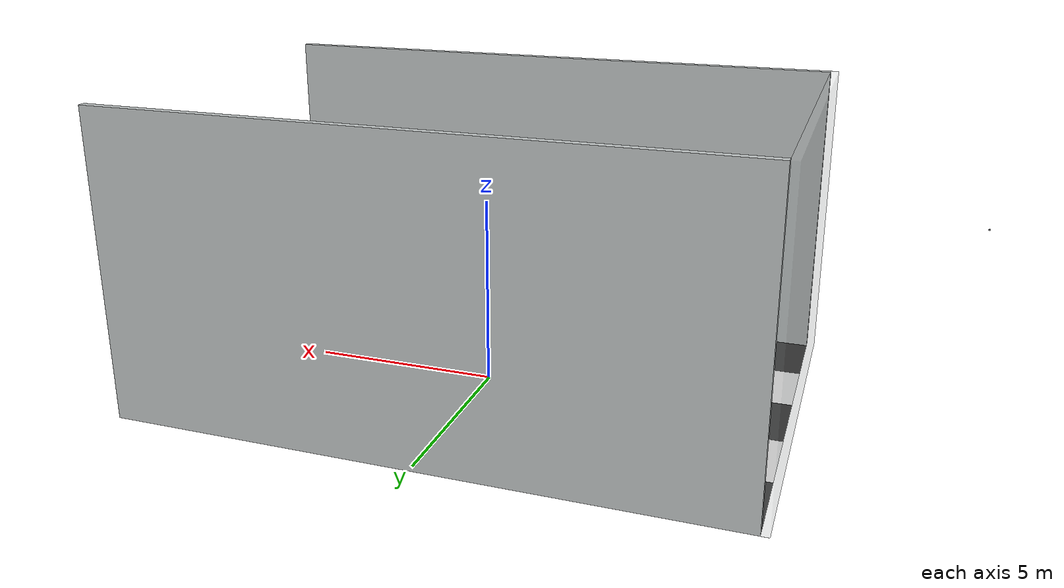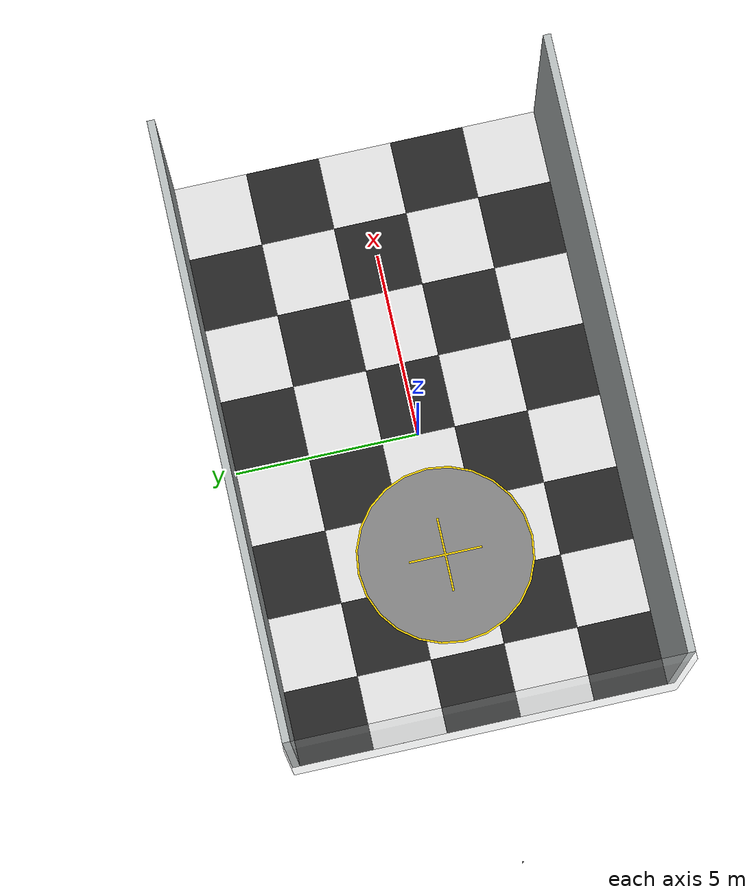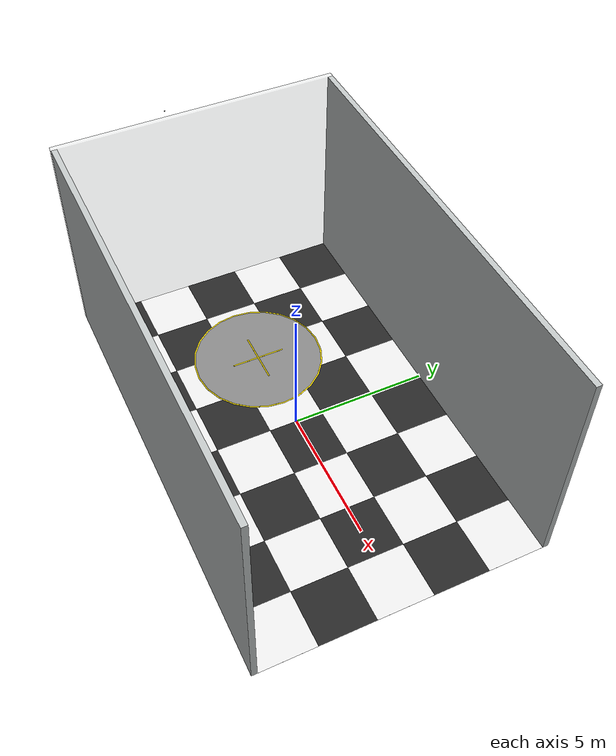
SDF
<sdf version="1.9">
 <world name="drone_hangar_small">
  <model name="ground_plane">
   <static>true</static>
   <link name="link">
    <collision name="collision">
     <geometry><plane><normal>0 0 1</normal><size>16.0 10.0</size></plane></geometry>
    </collision>
   </link>
  </model>
  <model name="floor_tiles">
   <static>true</static>
   <pose>0 0 0.0015 0 0 0</pose>
   <link name="tiles">
    <visual name="t_00_00">
     <pose>-7.0 -4.0 0 0 0 0</pose>
     <geometry><box><size>2 2 0.001</size></box></geometry>
     <material><ambient>0.15 0.15 0.15 1</ambient><diffuse>0.15 0.15 0.15 1</diffuse></material>
    </visual>
    <visual name="t_00_01">
     <pose>-7.0 -2.0 0 0 0 0</pose>
     <geometry><box><size>2 2 0.001</size></box></geometry>
     <material><ambient>0.9 0.9 0.9 1</ambient><diffuse>0.9 0.9 0.9 1</diffuse></material>
    </visual>
    <visual name="t_00_02">
     <pose>-7.0 0.0 0 0 0 0</pose>
     <geometry><box><size>2 2 0.001</size></box></geometry>
     <material><ambient>0.15 0.15 0.15 1</ambient><diffuse>0.15 0.15 0.15 1</diffuse></material>
    </visual>
    <visual name="t_00_03">
     <pose>-7.0 2.0 0 0 0 0</pose>
     <geometry><box><size>2 2 0.001</size></box></geometry>
     <material><ambient>0.9 0.9 0.9 1</ambient><diffuse>0.9 0.9 0.9 1</diffuse></material>
    </visual>
    <visual name="t_00_04">
     <pose>-7.0 4.0 0 0 0 0</pose>
     <geometry><box><size>2 2 0.001</size></box></geometry>
     <material><ambient>0.15 0.15 0.15 1</ambient><diffuse>0.15 0.15 0.15 1</diffuse></material>
    </visual>
    <visual name="t_01_00">
     <pose>-5.0 -4.0 0 0 0 0</pose>
     <geometry><box><size>2 2 0.001</size></box></geometry>
     <material><ambient>0.9 0.9 0.9 1</ambient><diffuse>0.9 0.9 0.9 1</diffuse></material>
    </visual>
    <visual name="t_01_01">
     <pose>-5.0 -2.0 0 0 0 0</pose>
     <geometry><box><size>2 2 0.001</size></box></geometry>
     <material><ambient>0.15 0.15 0.15 1</ambient><diffuse>0.15 0.15 0.15 1</diffuse></material>
    </visual>
    <visual name="t_01_02">
     <pose>-5.0 0.0 0 0 0 0</pose>
     <geometry><box><size>2 2 0.001</size></box></geometry>
     <material><ambient>0.9 0.9 0.9 1</ambient><diffuse>0.9 0.9 0.9 1</diffuse></material>
    </visual>
    <visual name="t_01_03">
     <pose>-5.0 2.0 0 0 0 0</pose>
     <geometry><box><size>2 2 0.001</size></box></geometry>
     <material><ambient>0.15 0.15 0.15 1</ambient><diffuse>0.15 0.15 0.15 1</diffuse></material>
    </visual>
    <visual name="t_01_04">
     <pose>-5.0 4.0 0 0 0 0</pose>
     <geometry><box><size>2 2 0.001</size></box></geometry>
     <material><ambient>0.9 0.9 0.9 1</ambient><diffuse>0.9 0.9 0.9 1</diffuse></material>
    </visual>
    <visual name="t_02_00">
     <pose>-3.0 -4.0 0 0 0 0</pose>
     <geometry><box><size>2 2 0.001</size></box></geometry>
     <material><ambient>0.15 0.15 0.15 1</ambient><diffuse>0.15 0.15 0.15 1</diffuse></material>
    </visual>
    <visual name="t_02_01">
     <pose>-3.0 -2.0 0 0 0 0</pose>
     <geometry><box><size>2 2 0.001</size></box></geometry>
     <material><ambient>0.9 0.9 0.9 1</ambient><diffuse>0.9 0.9 0.9 1</diffuse></material>
    </visual>
    <visual name="t_02_02">
     <pose>-3.0 0.0 0 0 0 0</pose>
     <geometry><box><size>2 2 0.001</size></box></geometry>
     <material><ambient>0.15 0.15 0.15 1</ambient><diffuse>0.15 0.15 0.15 1</diffuse></material>
    </visual>
    <visual name="t_02_03">
     <pose>-3.0 2.0 0 0 0 0</pose>
     <geometry><box><size>2 2 0.001</size></box></geometry>
     <material><ambient>0.9 0.9 0.9 1</ambient><diffuse>0.9 0.9 0.9 1</diffuse></material>
    </visual>
    <visual name="t_02_04">
     <pose>-3.0 4.0 0 0 0 0</pose>
     <geometry><box><size>2 2 0.001</size></box></geometry>
     <material><ambient>0.15 0.15 0.15 1</ambient><diffuse>0.15 0.15 0.15 1</diffuse></material>
    </visual>
    <visual name="t_03_00">
     <pose>-1.0 -4.0 0 0 0 0</pose>
     <geometry><box><size>2 2 0.001</size></box></geometry>
     <material><ambient>0.9 0.9 0.9 1</ambient><diffuse>0.9 0.9 0.9 1</diffuse></material>
    </visual>
    <visual name="t_03_01">
     <pose>-1.0 -2.0 0 0 0 0</pose>
     <geometry><box><size>2 2 0.001</size></box></geometry>
     <material><ambient>0.15 0.15 0.15 1</ambient><diffuse>0.15 0.15 0.15 1</diffuse></material>
    </visual>
    <visual name="t_03_02">
     <pose>-1.0 0.0 0 0 0 0</pose>
     <geometry><box><size>2 2 0.001</size></box></geometry>
     <material><ambient>0.9 0.9 0.9 1</ambient><diffuse>0.9 0.9 0.9 1</diffuse></material>
    </visual>
    <visual name="t_03_03">
     <pose>-1.0 2.0 0 0 0 0</pose>
     <geometry><box><size>2 2 0.001</size></box></geometry>
     <material><ambient>0.15 0.15 0.15 1</ambient><diffuse>0.15 0.15 0.15 1</diffuse></material>
    </visual>
    <visual name="t_03_04">
     <pose>-1.0 4.0 0 0 0 0</pose>
     <geometry><box><size>2 2 0.001</size></box></geometry>
     <material><ambient>0.9 0.9 0.9 1</ambient><diffuse>0.9 0.9 0.9 1</diffuse></material>
    </visual>
    <visual name="t_04_00">
     <pose>1.0 -4.0 0 0 0 0</pose>
     <geometry><box><size>2 2 0.001</size></box></geometry>
     <material><ambient>0.15 0.15 0.15 1</ambient><diffuse>0.15 0.15 0.15 1</diffuse></material>
    </visual>
    <visual name="t_04_01">
     <pose>1.0 -2.0 0 0 0 0</pose>
     <geometry><box><size>2 2 0.001</size></box></geometry>
     <material><ambient>0.9 0.9 0.9 1</ambient><diffuse>0.9 0.9 0.9 1</diffuse></material>
    </visual>
    <visual name="t_04_02">
     <pose>1.0 0.0 0 0 0 0</pose>
     <geometry><box><size>2 2 0.001</size></box></geometry>
     <material><ambient>0.15 0.15 0.15 1</ambient><diffuse>0.15 0.15 0.15 1</diffuse></material>
    </visual>
    <visual name="t_04_03">
     <pose>1.0 2.0 0 0 0 0</pose>
     <geometry><box><size>2 2 0.001</size></box></geometry>
     <material><ambient>0.9 0.9 0.9 1</ambient><diffuse>0.9 0.9 0.9 1</diffuse></material>
    </visual>
    <visual name="t_04_04">
     <pose>1.0 4.0 0 0 0 0</pose>
     <geometry><box><size>2 2 0.001</size></box></geometry>
     <material><ambient>0.15 0.15 0.15 1</ambient><diffuse>0.15 0.15 0.15 1</diffuse></material>
    </visual>
    <visual name="t_05_00">
     <pose>3.0 -4.0 0 0 0 0</pose>
     <geometry><box><size>2 2 0.001</size></box></geometry>
     <material><ambient>0.9 0.9 0.9 1</ambient><diffuse>0.9 0.9 0.9 1</diffuse></material>
    </visual>
    <visual name="t_05_01">
     <pose>3.0 -2.0 0 0 0 0</pose>
     <geometry><box><size>2 2 0.001</size></box></geometry>
     <material><ambient>0.15 0.15 0.15 1</ambient><diffuse>0.15 0.15 0.15 1</diffuse></material>
    </visual>
    <visual name="t_05_02">
     <pose>3.0 0.0 0 0 0 0</pose>
     <geometry><box><size>2 2 0.001</size></box></geometry>
     <material><ambient>0.9 0.9 0.9 1</ambient><diffuse>0.9 0.9 0.9 1</diffuse></material>
    </visual>
    <visual name="t_05_03">
     <pose>3.0 2.0 0 0 0 0</pose>
     <geometry><box><size>2 2 0.001</size></box></geometry>
     <material><ambient>0.15 0.15 0.15 1</ambient><diffuse>0.15 0.15 0.15 1</diffuse></material>
    </visual>
    <visual name="t_05_04">
     <pose>3.0 4.0 0 0 0 0</pose>
     <geometry><box><size>2 2 0.001</size></box></geometry>
     <material><ambient>0.9 0.9 0.9 1</ambient><diffuse>0.9 0.9 0.9 1</diffuse></material>
    </visual>
    <visual name="t_06_00">
     <pose>5.0 -4.0 0 0 0 0</pose>
     <geometry><box><size>2 2 0.001</size></box></geometry>
     <material><ambient>0.15 0.15 0.15 1</ambient><diffuse>0.15 0.15 0.15 1</diffuse></material>
    </visual>
    <visual name="t_06_01">
     <pose>5.0 -2.0 0 0 0 0</pose>
     <geometry><box><size>2 2 0.001</size></box></geometry>
     <material><ambient>0.9 0.9 0.9 1</ambient><diffuse>0.9 0.9 0.9 1</diffuse></material>
    </visual>
    <visual name="t_06_02">
     <pose>5.0 0.0 0 0 0 0</pose>
     <geometry><box><size>2 2 0.001</size></box></geometry>
     <material><ambient>0.15 0.15 0.15 1</ambient><diffuse>0.15 0.15 0.15 1</diffuse></material>
    </visual>
    <visual name="t_06_03">
     <pose>5.0 2.0 0 0 0 0</pose>
     <geometry><box><size>2 2 0.001</size></box></geometry>
     <material><ambient>0.9 0.9 0.9 1</ambient><diffuse>0.9 0.9 0.9 1</diffuse></material>
    </visual>
    <visual name="t_06_04">
     <pose>5.0 4.0 0 0 0 0</pose>
     <geometry><box><size>2 2 0.001</size></box></geometry>
     <material><ambient>0.15 0.15 0.15 1</ambient><diffuse>0.15 0.15 0.15 1</diffuse></material>
    </visual>
    <visual name="t_07_00">
     <pose>7.0 -4.0 0 0 0 0</pose>
     <geometry><box><size>2 2 0.001</size></box></geometry>
     <material><ambient>0.9 0.9 0.9 1</ambient><diffuse>0.9 0.9 0.9 1</diffuse></material>
    </visual>
    <visual name="t_07_01">
     <pose>7.0 -2.0 0 0 0 0</pose>
     <geometry><box><size>2 2 0.001</size></box></geometry>
     <material><ambient>0.15 0.15 0.15 1</ambient><diffuse>0.15 0.15 0.15 1</diffuse></material>
    </visual>
    <visual name="t_07_02">
     <pose>7.0 0.0 0 0 0 0</pose>
     <geometry><box><size>2 2 0.001</size></box></geometry>
     <material><ambient>0.9 0.9 0.9 1</ambient><diffuse>0.9 0.9 0.9 1</diffuse></material>
    </visual>
    <visual name="t_07_03">
     <pose>7.0 2.0 0 0 0 0</pose>
     <geometry><box><size>2 2 0.001</size></box></geometry>
     <material><ambient>0.15 0.15 0.15 1</ambient><diffuse>0.15 0.15 0.15 1</diffuse></material>
    </visual>
    <visual name="t_07_04">
     <pose>7.0 4.0 0 0 0 0</pose>
     <geometry><box><size>2 2 0.001</size></box></geometry>
     <material><ambient>0.9 0.9 0.9 1</ambient><diffuse>0.9 0.9 0.9 1</diffuse></material>
    </visual>
   </link>
  </model>
  <model name="pad_1_ring">
   <static>true</static>
   <pose>-3.33 0 0.003 0 0 0</pose>
   <link name="link">
    <visual name="v">
     <visibility_flags>2</visibility_flags>
     <geometry><cylinder><radius>2.4</radius><length>0.002</length></cylinder></geometry>
     <material><ambient>1.0 0.85 0.0 1</ambient><diffuse>1.0 0.85 0.0 1</diffuse></material>
    </visual>
   </link>
  </model>
  <model name="pad_1_fill">
   <static>true</static>
   <pose>-3.33 0 0.004 0 0 0</pose>
   <link name="link">
    <visual name="v">
     <visibility_flags>2</visibility_flags>
     <geometry><cylinder><radius>2.35</radius><length>0.002</length></cylinder></geometry>
     <material><ambient>0.52 0.52 0.52 1</ambient><diffuse>0.52 0.52 0.52 1</diffuse></material>
    </visual>
   </link>
  </model>
  <model name="pad_1_cross_h">
   <static>true</static>
   <pose>-3.33 0 0.006 0 0 0</pose>
   <link name="link">
    <visual name="v">
     <visibility_flags>2</visibility_flags>
     <geometry><box><size>2.0 0.05 0.002</size></box></geometry>
     <material><ambient>1.0 0.85 0.0 1</ambient><diffuse>1.0 0.85 0.0 1</diffuse></material>
    </visual>
   </link>
  </model>
  <model name="pad_1_cross_v">
   <static>true</static>
   <pose>-3.33 0 0.006 0 0 0</pose>
   <link name="link">
    <visual name="v">
     <visibility_flags>2</visibility_flags>
     <geometry><box><size>0.05 2.0 0.002</size></box></geometry>
     <material><ambient>1.0 0.85 0.0 1</ambient><diffuse>1.0 0.85 0.0 1</diffuse></material>
    </visual>
   </link>
  </model>
  <model name="wall_south">
   <static>true</static>
   <pose>-8.1 0 4.0 0 0 0</pose>
   <link name="link">
    <collision name="c"><geometry><box><size>0.2 10.4 8.0</size></box></geometry></collision>
    <visual name="v">
     <visibility_flags>1</visibility_flags>
     <transparency>0.78</transparency>
     <geometry><box><size>0.2 10.4 8.0</size></box></geometry>
     <material>
      <ambient>0.74 0.76 0.76 0.22</ambient>
      <diffuse>0.74 0.76 0.76 0.22</diffuse>
      <specular>0.20 0.20 0.20 0.22</specular>
     </material>
    </visual>
   </link>
  </model>
  <model name="wall_east">
   <static>true</static>
   <pose>0 5.1 4.0 0 0 0</pose>
   <link name="link">
    <collision name="c"><geometry><box><size>16.0 0.2 8.0</size></box></geometry></collision>
    <visual name="v">
     <geometry><box><size>16.0 0.2 8.0</size></box></geometry>
     <material>
      <ambient>0.74 0.76 0.76 1</ambient>
      <diffuse>0.74 0.76 0.76 1</diffuse>
      <specular>0.20 0.20 0.20 1</specular>
      <emissive>0.06 0.06 0.06 1</emissive>
     </material>
    </visual>
   </link>
  </model>
  <model name="wall_west">
   <static>true</static>
   <pose>0 -5.1 4.0 0 0 0</pose>
   <link name="link">
    <collision name="c"><geometry><box><size>16.0 0.2 8.0</size></box></geometry></collision>
    <visual name="v">
     <geometry><box><size>16.0 0.2 8.0</size></box></geometry>
     <material>
      <ambient>0.74 0.76 0.76 1</ambient>
      <diffuse>0.74 0.76 0.76 1</diffuse>
      <specular>0.20 0.20 0.20 1</specular>
      <emissive>0.06 0.06 0.06 1</emissive>
     </material>
    </visual>
   </link>
  </model>
  <include>
   <uri>model://mono_cam_hd</uri>
   <name>fixed_cam</name>
   <pose>-12 0 5.5 0 0.4 0</pose>
   <static>true</static>
  </include>
 </world>
</sdf>
